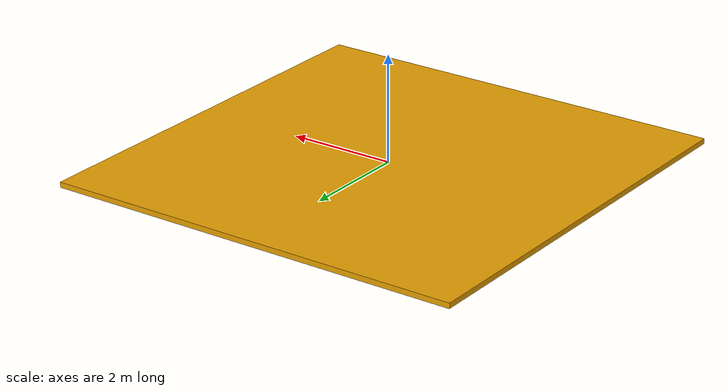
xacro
<?xml version="1.0"?>

<robot name="grid">

  <link name="base_link">
    <inertial>
      <origin xyz="0 0 0"/>
      <mass value="1.0" />
      <inertia  ixx="0.0" ixy="0.0"  ixz="0.0"  iyy="0.0"  iyz="0.0"  izz="0.0" />
    </inertial>
    <visual>
      <origin xyz="0 0 0"/>
      <geometry>
        <box size="8 8 0.1" />
      </geometry>
    </visual>
    <collision>
      <origin xyz="0 0 0"/>
      <geometry>
        <box size="8 8 0.1" />
      </geometry>
    </collision>
  </link>

  <gazebo reference="base_link">
    <material name="grid">
      <texture filename="file://grid.png"/>
    </material>
    <static>true</static>
  </gazebo>

</robot>
